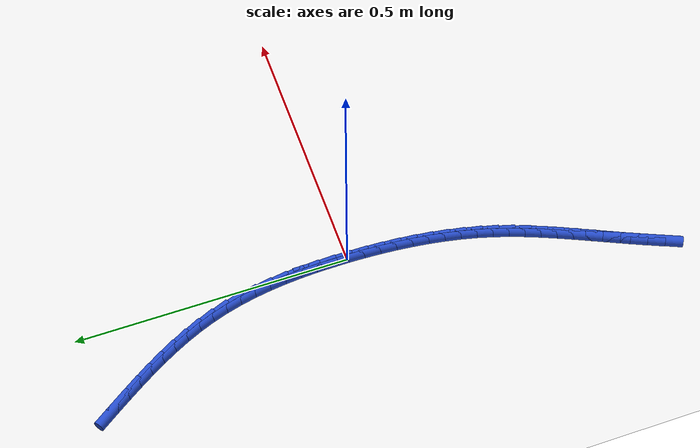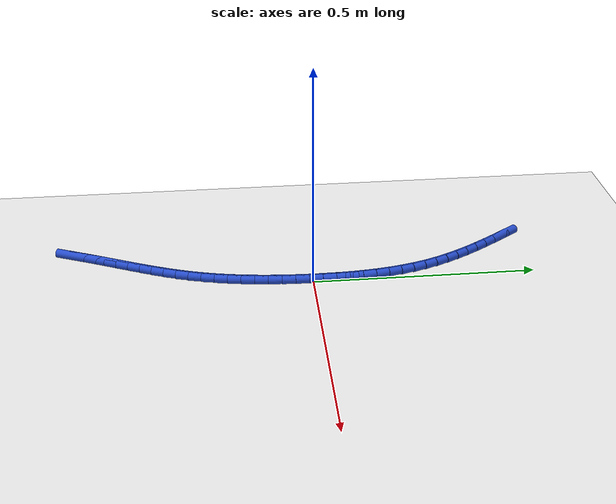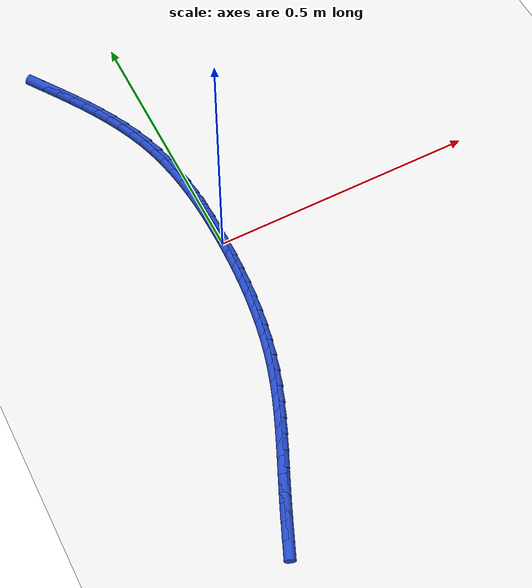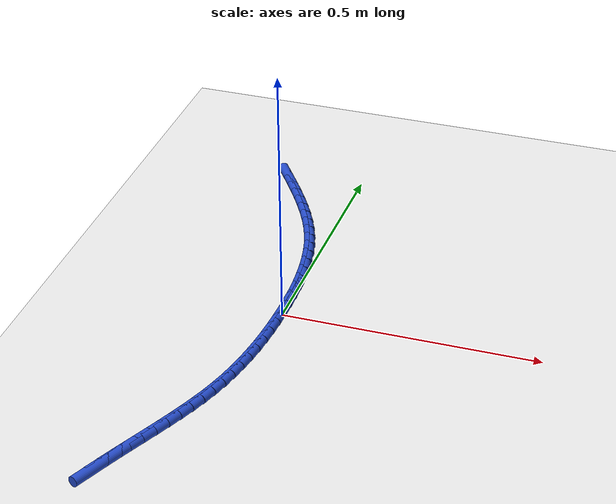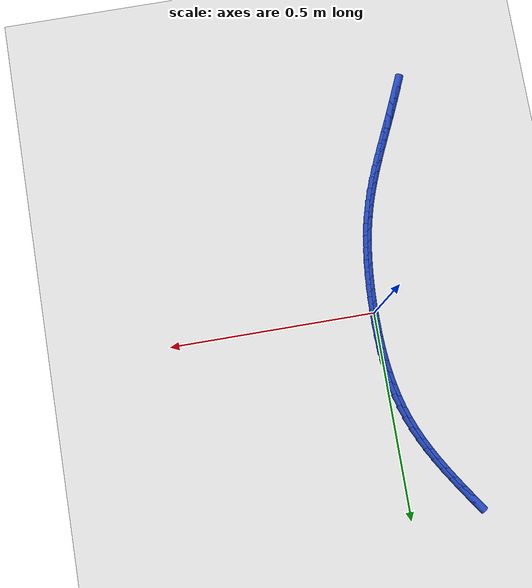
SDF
<sdf version="1.6">
 <world name="default">
  <model name="ground_plane">
   <static>1</static>
   <link name="link">
    <collision name="collision">
     <geometry><plane><normal>0 0 1</normal><size>100 100</size></plane></geometry>
     <surface><friction><ode><mu>100</mu><mu2>50</mu2></ode></friction></surface>
    </collision>
    <visual name="visual">
     <cast_shadows>0</cast_shadows>
     <geometry><plane><normal>0 0 1</normal><size>100 100</size></plane></geometry>
     <material>
      <script><uri>file://media/materials/scripts/gazebo.material</uri><name>Gazebo/WhiteGlow</name></script>
     </material>
    </visual>
   </link>
  </model>
  <model name="line">
   <link name="link_0">
    <pose>-7.37257477290143e-18 -4.85722573273506e-17 0.01 0 1.57 1.5703176747545027</pose>
    <collision name="collision">
     <geometry><cylinder><radius>0.01</radius><length>0.08</length></cylinder></geometry>
    </collision>
    <visual name="visual">
     <material>
      <script><name>Gazebo/Blue</name><uri>file://media/materials/scripts/gazebo.material</uri></script>
     </material>
     <geometry><cylinder><radius>0.01</radius><length>0.08</length></cylinder></geometry>
    </visual>
   </link>
   <link name="link_1">
    <pose>1.4461063084984735e-05 0.030212055439494005 0.01 0 1.57 -1.5468161941087766</pose>
    <collision name="collision">
     <geometry><cylinder><radius>0.01</radius><length>0.08</length></cylinder></geometry>
    </collision>
    <visual name="visual">
     <material>
      <script><name>Gazebo/Blue</name><uri>file://media/materials/scripts/gazebo.material</uri></script>
     </material>
     <geometry><cylinder><radius>0.01</radius><length>0.08</length></cylinder></geometry>
    </visual>
   </link>
   <link name="link_2">
    <pose>-0.0007090973743195369 0.06037951732319605 0.01 0 1.57 -1.518462994660471</pose>
    <collision name="collision">
     <geometry><cylinder><radius>0.01</radius><length>0.08</length></cylinder></geometry>
    </collision>
    <visual name="visual">
     <material>
      <script><name>Gazebo/Blue</name><uri>file://media/materials/scripts/gazebo.material</uri></script>
     </material>
     <geometry><cylinder><radius>0.01</radius><length>0.08</length></cylinder></geometry>
    </visual>
   </link>
   <link name="link_3">
    <pose>-0.002282989804969906 0.09042643497516462 0.01 0 1.57 -1.4860249316204777</pose>
    <collision name="collision">
     <geometry><cylinder><radius>0.01</radius><length>0.08</length></cylinder></geometry>
    </collision>
    <visual name="visual">
     <material>
      <script><name>Gazebo/Blue</name><uri>file://media/materials/scripts/gazebo.material</uri></script>
     </material>
     <geometry><cylinder><radius>0.01</radius><length>0.08</length></cylinder></geometry>
    </visual>
   </link>
   <link name="link_4">
    <pose>-0.004819530721622448 0.1202768577194582 0.01 0 1.57 -1.4492966331668435</pose>
    <collision name="collision">
     <geometry><cylinder><radius>0.01</radius><length>0.08</length></cylinder></geometry>
    </collision>
    <visual name="visual">
     <material>
      <script><name>Gazebo/Blue</name><uri>file://media/materials/scripts/gazebo.material</uri></script>
     </material>
     <geometry><cylinder><radius>0.01</radius><length>0.08</length></cylinder></geometry>
    </visual>
   </link>
   <link name="link_5">
    <pose>-0.008431034617033494 0.1498548348801353 0.01 0 1.57 -1.4080724517758658</pose>
    <collision name="collision">
     <geometry><cylinder><radius>0.01</radius><length>0.08</length></cylinder></geometry>
    </collision>
    <visual name="visual">
     <material>
      <script><name>Gazebo/Blue</name><uri>file://media/materials/scripts/gazebo.material</uri></script>
     </material>
     <geometry><cylinder><radius>0.01</radius><length>0.08</length></cylinder></geometry>
    </visual>
   </link>
   <link name="link_6">
    <pose>-0.013229815983959378 0.17908441578125434 0.01 0 1.57 -1.3621663498640866</pose>
    <collision name="collision">
     <geometry><cylinder><radius>0.01</radius><length>0.08</length></cylinder></geometry>
    </collision>
    <visual name="visual">
     <material>
      <script><name>Gazebo/Blue</name><uri>file://media/materials/scripts/gazebo.material</uri></script>
     </material>
     <geometry><cylinder><radius>0.01</radius><length>0.08</length></cylinder></geometry>
    </visual>
   </link>
   <link name="link_7">
    <pose>-0.01932818931515642 0.20788964974687382 0.01 0 1.57 -1.3114379505265983</pose>
    <collision name="collision">
     <geometry><cylinder><radius>0.01</radius><length>0.08</length></cylinder></geometry>
    </collision>
    <visual name="visual">
     <material>
      <script><name>Gazebo/Blue</name><uri>file://media/materials/scripts/gazebo.material</uri></script>
     </material>
     <geometry><cylinder><radius>0.01</radius><length>0.08</length></cylinder></geometry>
    </visual>
   </link>
   <link name="link_8">
    <pose>-0.026838469103380953 0.2361945861010522 0.01 0 1.57 -1.2558365321164362</pose>
    <collision name="collision">
     <geometry><cylinder><radius>0.01</radius><length>0.08</length></cylinder></geometry>
    </collision>
    <visual name="visual">
     <material>
      <script><name>Gazebo/Blue</name><uri>file://media/materials/scripts/gazebo.material</uri></script>
     </material>
     <geometry><cylinder><radius>0.01</radius><length>0.08</length></cylinder></geometry>
    </visual>
   </link>
   <link name="link_9">
    <pose>-0.03587266493122443 0.26392343205464086 0.01 0 1.57 -1.1984196080494318</pose>
    <collision name="collision">
     <geometry><cylinder><radius>0.01</radius><length>0.08</length></cylinder></geometry>
    </collision>
    <visual name="visual">
     <material>
      <script><name>Gazebo/Blue</name><uri>file://media/materials/scripts/gazebo.material</uri></script>
     </material>
     <geometry><cylinder><radius>0.01</radius><length>0.08</length></cylinder></geometry>
    </visual>
   </link>
   <link name="link_10">
    <pose>-0.04646471582685968 0.2910408208550086 0.01 0 1.57 -1.1464235233692137</pose>
    <collision name="collision">
     <geometry><cylinder><radius>0.01</radius><length>0.08</length></cylinder></geometry>
    </collision>
    <visual name="visual">
     <material>
      <script><name>Gazebo/Blue</name><uri>file://media/materials/scripts/gazebo.material</uri></script>
     </material>
     <geometry><cylinder><radius>0.01</radius><length>0.08</length></cylinder></geometry>
    </visual>
   </link>
   <link name="link_11">
    <pose>-0.05846726643262977 0.31760526254489796 0.01 0 1.57 -1.101082894614376</pose>
    <collision name="collision">
     <geometry><cylinder><radius>0.01</radius><length>0.08</length></cylinder></geometry>
    </collision>
    <visual name="visual">
     <material>
      <script><name>Gazebo/Blue</name><uri>file://media/materials/scripts/gazebo.material</uri></script>
     </material>
     <geometry><cylinder><radius>0.01</radius><length>0.08</length></cylinder></geometry>
    </visual>
   </link>
   <link name="link_12">
    <pose>-0.0717072901378438 0.3436885601047071 0.01 0 1.57 -1.0624735519073758</pose>
    <collision name="collision">
     <geometry><cylinder><radius>0.01</radius><length>0.08</length></cylinder></geometry>
    </collision>
    <visual name="visual">
     <material>
      <script><name>Gazebo/Blue</name><uri>file://media/materials/scripts/gazebo.material</uri></script>
     </material>
     <geometry><cylinder><radius>0.01</radius><length>0.08</length></cylinder></geometry>
    </visual>
   </link>
   <link name="link_13">
    <pose>-0.08601176033181075 0.36936251651483404 0.01 0 1.57 -1.030549836354013</pose>
    <collision name="collision">
     <geometry><cylinder><radius>0.01</radius><length>0.08</length></cylinder></geometry>
    </collision>
    <visual name="visual">
     <material>
      <script><name>Gazebo/Blue</name><uri>file://media/materials/scripts/gazebo.material</uri></script>
     </material>
     <geometry><cylinder><radius>0.01</radius><length>0.08</length></cylinder></geometry>
    </visual>
   </link>
   <link name="link_14">
    <pose>-0.1012076504038397 0.3946989347556767 0.01 0 1.57 -1.0051975066920322</pose>
    <collision name="collision">
     <geometry><cylinder><radius>0.01</radius><length>0.08</length></cylinder></geometry>
    </collision>
    <visual name="visual">
     <material>
      <script><name>Gazebo/Blue</name><uri>file://media/materials/scripts/gazebo.material</uri></script>
     </material>
     <geometry><cylinder><radius>0.01</radius><length>0.08</length></cylinder></geometry>
    </visual>
   </link>
   <link name="link_15">
    <pose>-0.11712193374323963 0.4197696178076331 0.01 0 1.57 -0.9862763057004852</pose>
    <collision name="collision">
     <geometry><cylinder><radius>0.01</radius><length>0.08</length></cylinder></geometry>
    </collision>
    <visual name="visual">
     <material>
      <script><name>Gazebo/Blue</name><uri>file://media/materials/scripts/gazebo.material</uri></script>
     </material>
     <geometry><cylinder><radius>0.01</radius><length>0.08</length></cylinder></geometry>
    </visual>
   </link>
   <link name="link_16">
    <pose>-0.13358158373931966 0.4446463686511013 0.01 0 1.57 -0.9736515097091859</pose>
    <collision name="collision">
     <geometry><cylinder><radius>0.01</radius><length>0.08</length></cylinder></geometry>
    </collision>
    <visual name="visual">
     <material>
      <script><name>Gazebo/Blue</name><uri>file://media/materials/scripts/gazebo.material</uri></script>
     </material>
     <geometry><cylinder><radius>0.01</radius><length>0.08</length></cylinder></geometry>
    </visual>
   </link>
   <link name="link_17">
    <pose>-0.15041357378138878 0.4694009902664794 0.01 0 1.57 -0.9672154872259042</pose>
    <collision name="collision">
     <geometry><cylinder><radius>0.01</radius><length>0.08</length></cylinder></geometry>
    </collision>
    <visual name="visual">
     <material>
      <script><name>Gazebo/Blue</name><uri>file://media/materials/scripts/gazebo.material</uri></script>
     </material>
     <geometry><cylinder><radius>0.01</radius><length>0.08</length></cylinder></geometry>
    </visual>
   </link>
   <link name="link_221">
    <pose>-0.15129038597306868 -0.5399587487520279 0.01 0 1.57 1.1633834616810232</pose>
    <collision name="collision">
     <geometry><cylinder><radius>0.01</radius><length>0.08</length></cylinder></geometry>
    </collision>
    <visual name="visual">
     <material>
      <script><name>Gazebo/Blue</name><uri>file://media/materials/scripts/gazebo.material</uri></script>
     </material>
     <geometry><cylinder><radius>0.01</radius><length>0.08</length></cylinder></geometry>
    </visual>
   </link>
   <link name="link_222">
    <pose>-0.1386721218226601 -0.5107199422555616 0.01 0 1.57 1.1541491680380997</pose>
    <collision name="collision">
     <geometry><cylinder><radius>0.01</radius><length>0.08</length></cylinder></geometry>
    </collision>
    <visual name="visual">
     <material>
      <script><name>Gazebo/Blue</name><uri>file://media/materials/scripts/gazebo.material</uri></script>
     </material>
     <geometry><cylinder><radius>0.01</radius><length>0.08</length></cylinder></geometry>
    </visual>
   </link>
   <link name="link_223">
    <pose>-0.12599928247844303 -0.4820844495045744 0.01 0 1.57 1.1450575295430323</pose>
    <collision name="collision">
     <geometry><cylinder><radius>0.01</radius><length>0.08</length></cylinder></geometry>
    </collision>
    <visual name="visual">
     <material>
      <script><name>Gazebo/Blue</name><uri>file://media/materials/scripts/gazebo.material</uri></script>
     </material>
     <geometry><cylinder><radius>0.01</radius><length>0.08</length></cylinder></geometry>
    </visual>
   </link>
   <link name="link_224">
    <pose>-0.11329883188707919 -0.4540774139267593 0.01 0 1.57 1.1417544384083584</pose>
    <collision name="collision">
     <geometry><cylinder><radius>0.01</radius><length>0.08</length></cylinder></geometry>
    </collision>
    <visual name="visual">
     <material>
      <script><name>Gazebo/Blue</name><uri>file://media/materials/scripts/gazebo.material</uri></script>
     </material>
     <geometry><cylinder><radius>0.01</radius><length>0.08</length></cylinder></geometry>
    </visual>
   </link>
   <link name="link_225">
    <pose>-0.10071180463421789 -0.42656249453253525 0.01 0 1.57 1.144673762753254</pose>
    <collision name="collision">
     <geometry><cylinder><radius>0.01</radius><length>0.08</length></cylinder></geometry>
    </collision>
    <visual name="visual">
     <material>
      <script><name>Gazebo/Blue</name><uri>file://media/materials/scripts/gazebo.material</uri></script>
     </material>
     <geometry><cylinder><radius>0.01</radius><length>0.08</length></cylinder></geometry>
    </visual>
   </link>
   <link name="link_226">
    <pose>-0.08838169892738634 -0.39939986269915995 0.01 0 1.57 1.1540654937238264</pose>
    <collision name="collision">
     <geometry><cylinder><radius>0.01</radius><length>0.08</length></cylinder></geometry>
    </collision>
    <visual name="visual">
     <material>
      <script><name>Gazebo/Blue</name><uri>file://media/materials/scripts/gazebo.material</uri></script>
     </material>
     <geometry><cylinder><radius>0.01</radius><length>0.08</length></cylinder></geometry>
    </visual>
   </link>
   <link name="link_227">
    <pose>-0.0764520129741118 -0.3724496898038912 0.01 0 1.57 1.170098179292646</pose>
    <collision name="collision">
     <geometry><cylinder><radius>0.01</radius><length>0.08</length></cylinder></geometry>
    </collision>
    <visual name="visual">
     <material>
      <script><name>Gazebo/Blue</name><uri>file://media/materials/scripts/gazebo.material</uri></script>
     </material>
     <geometry><cylinder><radius>0.01</radius><length>0.08</length></cylinder></geometry>
    </visual>
   </link>
   <link name="link_228">
    <pose>-0.06506624498192151 -0.3455721472239871 0.01 0 1.57 1.1928374820721457</pose>
    <collision name="collision">
     <geometry><cylinder><radius>0.01</radius><length>0.08</length></cylinder></geometry>
    </collision>
    <visual name="visual">
     <material>
      <script><name>Gazebo/Blue</name><uri>file://media/materials/scripts/gazebo.material</uri></script>
     </material>
     <geometry><cylinder><radius>0.01</radius><length>0.08</length></cylinder></geometry>
    </visual>
   </link>
   <link name="link_229">
    <pose>-0.05436789315834267 -0.3186274063367054 0.01 0 1.57 1.222218318722211</pose>
    <collision name="collision">
     <geometry><cylinder><radius>0.01</radius><length>0.08</length></cylinder></geometry>
    </collision>
    <visual name="visual">
     <material>
      <script><name>Gazebo/Blue</name><uri>file://media/materials/scripts/gazebo.material</uri></script>
     </material>
     <geometry><cylinder><radius>0.01</radius><length>0.08</length></cylinder></geometry>
    </visual>
   </link>
   <link name="link_230">
    <pose>-0.044500455710902304 -0.29147563851930336 0.01 0 1.57 1.2580132384226952</pose>
    <collision name="collision">
     <geometry><cylinder><radius>0.01</radius><length>0.08</length></cylinder></geometry>
    </collision>
    <visual name="visual">
     <material>
      <script><name>Gazebo/Blue</name><uri>file://media/materials/scripts/gazebo.material</uri></script>
     </material>
     <geometry><cylinder><radius>0.01</radius><length>0.08</length></cylinder></geometry>
    </visual>
   </link>
   <link name="link_231">
    <pose>-0.03560743084712815 -0.26397701514904043 0.01 0 1.57 1.2990369775058317</pose>
    <collision name="collision">
     <geometry><cylinder><radius>0.01</radius><length>0.08</length></cylinder></geometry>
    </collision>
    <visual name="visual">
     <material>
      <script><name>Gazebo/Blue</name><uri>file://media/materials/scripts/gazebo.material</uri></script>
     </material>
     <geometry><cylinder><radius>0.01</radius><length>0.08</length></cylinder></geometry>
    </visual>
   </link>
   <link name="link_232">
    <pose>-0.027814110634878167 -0.23600920022183847 0.01 0 1.57 1.3395017383064391</pose>
    <collision name="collision">
     <geometry><cylinder><radius>0.01</radius><length>0.08</length></cylinder></geometry>
    </collision>
    <visual name="visual">
     <material>
      <script><name>Gazebo/Blue</name><uri>file://media/materials/scripts/gazebo.material</uri></script>
     </material>
     <geometry><cylinder><radius>0.01</radius><length>0.08</length></cylinder></geometry>
    </visual>
   </link>
   <link name="link_233">
    <pose>-0.021117212549050933 -0.20757339333015654 0.01 0 1.57 1.377094857618802</pose>
    <collision name="collision">
     <geometry><cylinder><radius>0.01</radius><length>0.08</length></cylinder></geometry>
    </collision>
    <visual name="visual">
     <material>
      <script><name>Gazebo/Blue</name><uri>file://media/materials/scripts/gazebo.material</uri></script>
     </material>
     <geometry><cylinder><radius>0.01</radius><length>0.08</length></cylinder></geometry>
    </visual>
   </link>
   <link name="link_234">
    <pose>-0.01545808616271741 -0.17872399203211534 0.01 0 1.57 1.4119114406583457</pose>
    <collision name="collision">
     <geometry><cylinder><radius>0.01</radius><length>0.08</length></cylinder></geometry>
    </collision>
    <visual name="visual">
     <material>
      <script><name>Gazebo/Blue</name><uri>file://media/materials/scripts/gazebo.material</uri></script>
     </material>
     <geometry><cylinder><radius>0.01</radius><length>0.08</length></cylinder></geometry>
    </visual>
   </link>
   <link name="link_235">
    <pose>-0.0107778648056261 -0.14951560165431624 0.01 0 1.57 1.4440704360798382</pose>
    <collision name="collision">
     <geometry><cylinder><radius>0.01</radius><length>0.08</length></cylinder></geometry>
    </collision>
    <visual name="visual">
     <material>
      <script><name>Gazebo/Blue</name><uri>file://media/materials/scripts/gazebo.material</uri></script>
     </material>
     <geometry><cylinder><radius>0.01</radius><length>0.08</length></cylinder></geometry>
    </visual>
   </link>
   <link name="link_236">
    <pose>-0.007017681807525494 -0.12000282752336067 0.01 0 1.57 1.473697972792105</pose>
    <collision name="collision">
     <geometry><cylinder><radius>0.01</radius><length>0.08</length></cylinder></geometry>
    </collision>
    <visual name="visual">
     <material>
      <script><name>Gazebo/Blue</name><uri>file://media/materials/scripts/gazebo.material</uri></script>
     </material>
     <geometry><cylinder><radius>0.01</radius><length>0.08</length></cylinder></geometry>
    </visual>
   </link>
   <link name="link_237">
    <pose>-0.004118670498164088 -0.09024027496584998 0.01 0 1.57 1.5009214366287478</pose>
    <collision name="collision">
     <geometry><cylinder><radius>0.01</radius><length>0.08</length></cylinder></geometry>
    </collision>
    <visual name="visual">
     <material>
      <script><name>Gazebo/Blue</name><uri>file://media/materials/scripts/gazebo.material</uri></script>
     </material>
     <geometry><cylinder><radius>0.01</radius><length>0.08</length></cylinder></geometry>
    </visual>
   </link>
   <link name="link_238">
    <pose>-0.002021964207290332 -0.06028254930838474 0.01 0 1.57 1.525864970405348</pose>
    <collision name="collision">
     <geometry><cylinder><radius>0.01</radius><length>0.08</length></cylinder></geometry>
    </collision>
    <visual name="visual">
     <material>
      <script><name>Gazebo/Blue</name><uri>file://media/materials/scripts/gazebo.material</uri></script>
     </material>
     <geometry><cylinder><radius>0.01</radius><length>0.08</length></cylinder></geometry>
    </visual>
   </link>
   <link name="link_239">
    <pose>-0.0006686962646528308 -0.030184255877567977 0.01 0 1.57 1.548646140194288</pose>
    <collision name="collision">
     <geometry><cylinder><radius>0.01</radius><length>0.08</length></cylinder></geometry>
    </collision>
    <visual name="visual">
     <material>
      <script><name>Gazebo/Blue</name><uri>file://media/materials/scripts/gazebo.material</uri></script>
     </material>
     <geometry><cylinder><radius>0.01</radius><length>0.08</length></cylinder></geometry>
    </visual>
   </link>
   <link name="link_240">
    <pose>-1.474514954580286e-17 -2.8449465006019636e-16 0.01 0 1.57 1.569373511778291</pose>
    <collision name="collision">
     <geometry><cylinder><radius>0.01</radius><length>0.08</length></cylinder></geometry>
    </collision>
    <visual name="visual">
     <material>
      <script><name>Gazebo/Blue</name><uri>file://media/materials/scripts/gazebo.material</uri></script>
     </material>
     <geometry><cylinder><radius>0.01</radius><length>0.08</length></cylinder></geometry>
    </visual>
   </link>
   <link name="link_241">
    <pose>4.29912569196206e-05 0.03021561299771698 0.01 0 1.57 -1.5534477511365765</pose>
    <collision name="collision">
     <geometry><cylinder><radius>0.01</radius><length>0.08</length></cylinder></geometry>
    </collision>
    <visual name="visual">
     <material>
      <script><name>Gazebo/Blue</name><uri>file://media/materials/scripts/gazebo.material</uri></script>
     </material>
     <geometry><cylinder><radius>0.01</radius><length>0.08</length></cylinder></geometry>
    </visual>
   </link>
   <link name="link_242">
    <pose>-0.0004808558236424187 0.06040797778898238 0.01 0 1.57 -1.5628363571792063</pose>
    <collision name="collision">
     <geometry><cylinder><radius>0.01</radius><length>0.08</length></cylinder></geometry>
    </collision>
    <visual name="visual">
     <material>
      <script><name>Gazebo/Blue</name><uri>file://media/materials/scripts/gazebo.material</uri></script>
     </material>
     <geometry><cylinder><radius>0.01</radius><length>0.08</length></cylinder></geometry>
    </visual>
   </link>
  </model>
 </world>
</sdf>
